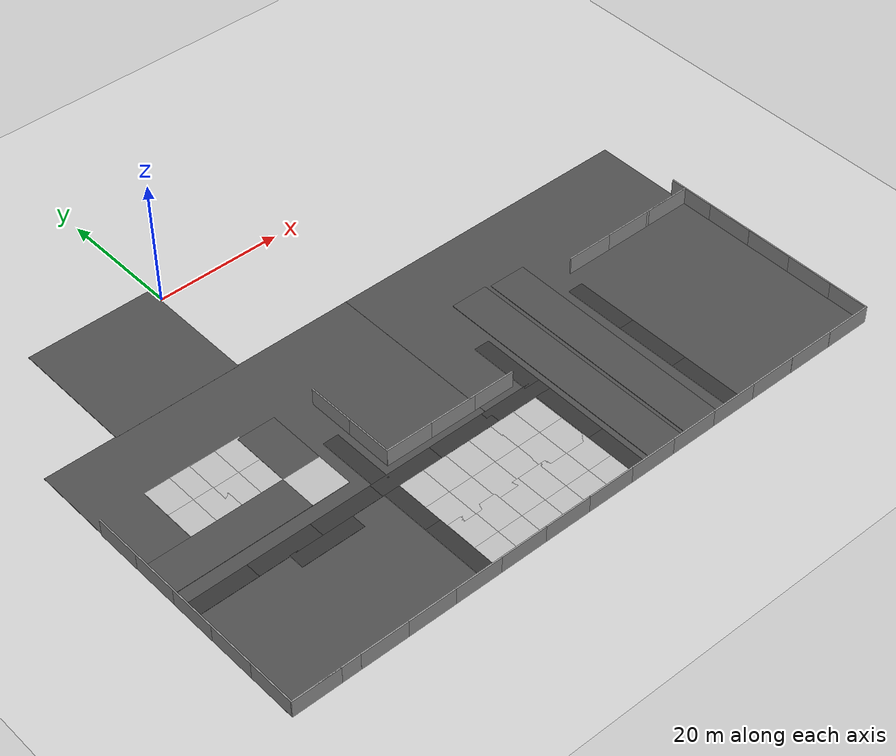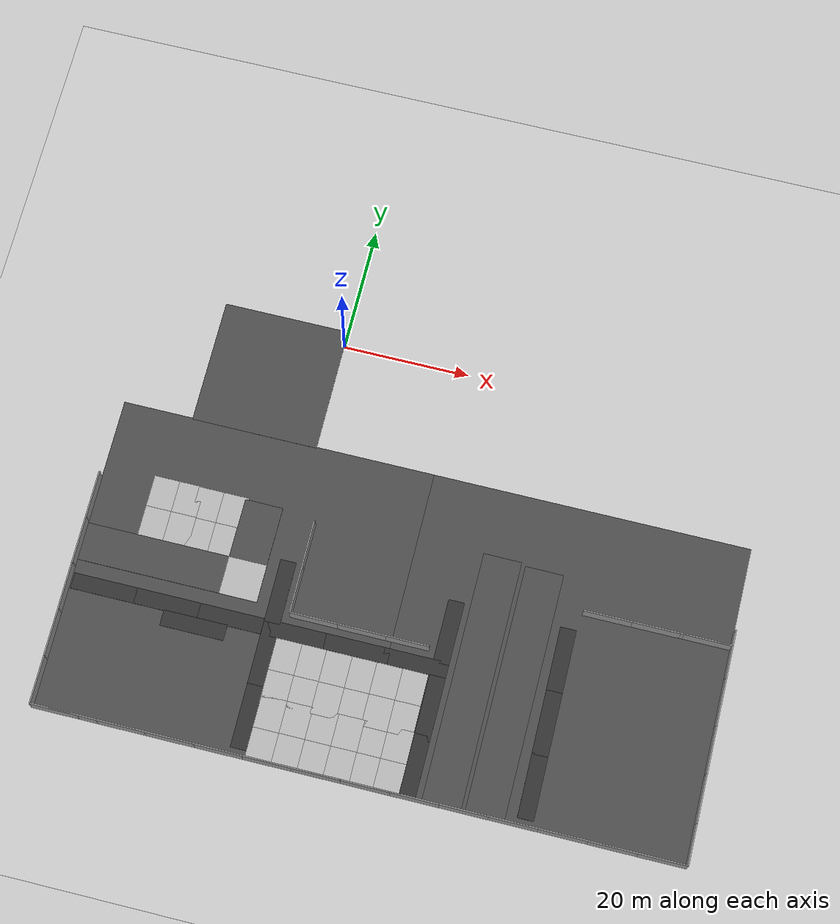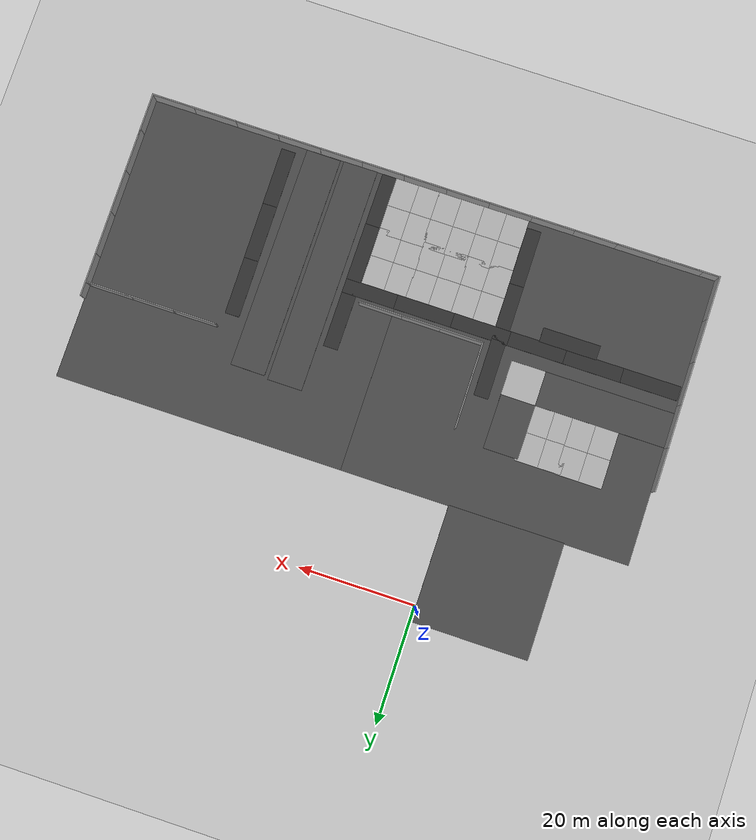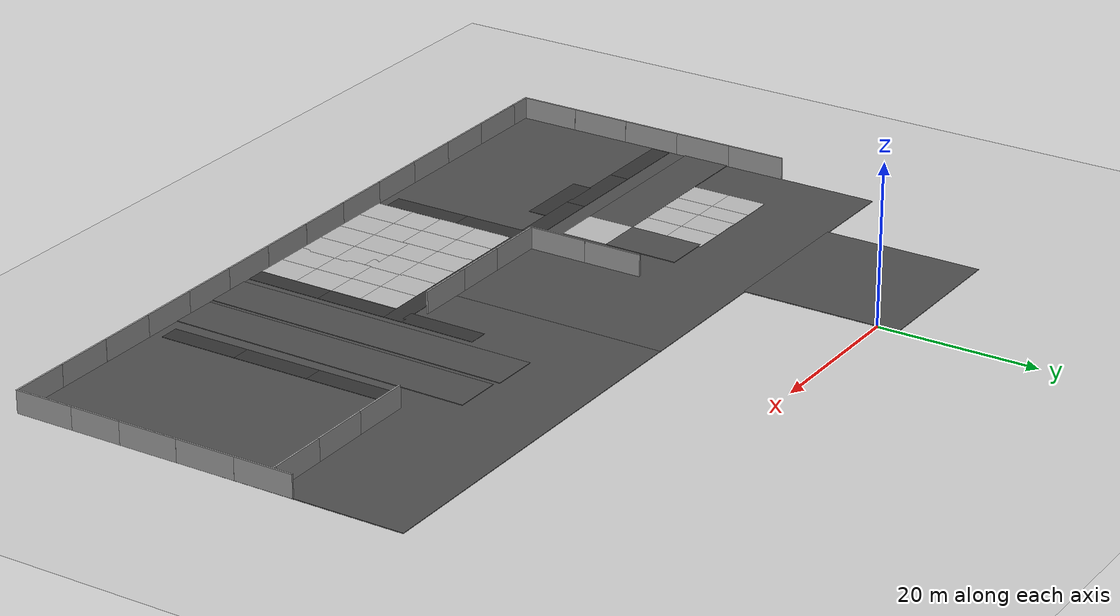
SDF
<sdf version="1.7">
 <world name="default">
  <model name="ground_plane">
   <static>1</static>
   <link name="link">
    <collision name="collision">
     <geometry><plane><normal>0 0 1</normal><size>100 100</size></plane></geometry>
     <surface><friction><ode><mu>100</mu><mu2>50</mu2></ode></friction></surface>
    </collision>
    <visual name="visual">
     <cast_shadows>0</cast_shadows>
     <geometry><plane><normal>0 0 1</normal><size>100 100</size></plane></geometry>
     <material>
      <script><uri>file://media/materials/scripts/gazebo.material</uri><name>Gazebo/Grey</name></script>
     </material>
    </visual>
   </link>
  </model>
  <model name="asphalt_plane">
   <static>1</static>
   <link name="link">
    <collision name="collision">
     <geometry><box><size>20 20 0.1</size></box></geometry>
     <surface><friction><ode><mu>100</mu><mu2>50</mu2></ode></friction></surface>
    </collision>
    <visual name="visual">
     <cast_shadows>0</cast_shadows>
     <geometry><box><size>20 20 0.1</size></box></geometry>
     <material>
      <script>
       <uri>model://asphalt_plane/materials/scripts</uri>
       <uri>model://asphalt_plane/materials/textures</uri>
       <name>vrc/asphalt</name>
      </script>
     </material>
    </visual>
   </link>
   <pose>-10.1692 -7.43707 0 0 -0 0</pose>
  </model>
  <model name="grey_wall_clone">
   <static>1</static>
   <link name="link">
    <pose>0 0 1.4 0 -0 0</pose>
    <collision name="collision"><geometry><box><size>7.5 0.2 2.8</size></box></geometry></collision>
    <visual name="visual">
     <cast_shadows>0</cast_shadows>
     <geometry><box><size>7.5 0.2 2.8</size></box></geometry>
     <material>
      <script>
       <uri>model://grey_wall/materials/scripts</uri>
       <uri>model://grey_wall/materials/textures</uri>
       <name>vrc/grey_wall</name>
      </script>
     </material>
    </visual>
   </link>
   <pose>49.4295 -33.5823 0 0 -0 0</pose>
  </model>
  <model name="asphalt_plane_0">
   <static>1</static>
   <link name="link">
    <collision name="collision"><geometry><box><size>50 50 0.1</size></box></geometry></collision>
    <visual name="visual">
     <cast_shadows>0</cast_shadows>
     <geometry><box><size>50 50 0.1</size></box></geometry>
     <material>
      <script>
       <uri>model://asphalt_plane/materials/scripts</uri>
       <uri>model://asphalt_plane/materials/textures</uri>
       <name>vrc/asphalt</name>
      </script>
     </material>
    </visual>
   </link>
   <pose>-6.22709 -42.2685 -0.007309 0 -0 0</pose>
  </model>
  <model name="side walk_clone_0_clone_clone_clone_0_clone_clone_3">
   <pose>3.83426 -46.9929 0 0 -0 0</pose>
   <static>1</static>
   <link name="link">
    <visual name="visual">
     <pose>0 0 0.05 0 -0 0</pose>
     <geometry><box><size>10 2.5 0.1</size></box></geometry>
     <material><ambient>0.2 0.2 0.2 1</ambient></material>
    </visual>
    <collision name="collision">
     <pose>0 0 0.05 0 -0 0</pose>
     <geometry><box><size>10 2.5 0.1</size></box></geometry>
    </collision>
   </link>
  </model>
  <model name="side walk_clone_0_clone_clone_clone_0_clone_clone_4">
   <pose>-5.93815 -47.0144 0 0 -0 0</pose>
   <static>1</static>
   <link name="link">
    <visual name="visual">
     <pose>0 0 0.05 0 -0 0</pose>
     <geometry><box><size>10 2.5 0.1</size></box></geometry>
     <material><ambient>0.2 0.2 0.2 1</ambient></material>
    </visual>
    <collision name="collision">
     <pose>0 0 0.05 0 -0 0</pose>
     <geometry><box><size>10 2.5 0.1</size></box></geometry>
    </collision>
   </link>
  </model>
  <model name="side walk_clone_0_clone_clone_clone_0_clone_clone_5">
   <pose>-15.9248 -47.0111 0 0 -0 0</pose>
   <static>1</static>
   <link name="link">
    <visual name="visual">
     <pose>0 0 0.05 0 -0 0</pose>
     <geometry><box><size>10 2.5 0.1</size></box></geometry>
     <material><ambient>0.2 0.2 0.2 1</ambient></material>
    </visual>
    <collision name="collision">
     <pose>0 0 0.05 0 -0 0</pose>
     <geometry><box><size>10 2.5 0.1</size></box></geometry>
    </collision>
   </link>
  </model>
  <model name="side walk_clone_0_clone_clone_clone_0_clone_clone_6">
   <pose>-25.9206 -47.0184 0 0 -0 0</pose>
   <static>1</static>
   <link name="link">
    <visual name="visual">
     <pose>0 0 0.05 0 -0 0</pose>
     <geometry><box><size>10 2.5 0.1</size></box></geometry>
     <material><ambient>0.2 0.2 0.2 1</ambient></material>
    </visual>
    <collision name="collision">
     <pose>0 0 0.05 0 -0 0</pose>
     <geometry><box><size>10 2.5 0.1</size></box></geometry>
    </collision>
   </link>
  </model>
  <model name="side walk_clone_0_clone_clone_clone_0_clone_clone_7">
   <pose>13.792 -46.9837 0 0 -0 0</pose>
   <static>1</static>
   <link name="link">
    <visual name="visual">
     <pose>0 0 0.05 0 -0 0</pose>
     <geometry><box><size>10 2.5 0.1</size></box></geometry>
     <material><ambient>0.2 0.2 0.2 1</ambient></material>
    </visual>
    <collision name="collision">
     <pose>0 0 0.05 0 -0 0</pose>
     <geometry><box><size>10 2.5 0.1</size></box></geometry>
    </collision>
   </link>
  </model>
  <model name="side walk_clone_1_clone_clone_clone_clone_0_clone">
   <pose>0.312658 -41.1369 0 0 0 -1.5667</pose>
   <static>1</static>
   <link name="link">
    <visual name="visual">
     <pose>0 0 0.05 0 -0 0</pose>
     <geometry><box><size>10 2.5 0.1</size></box></geometry>
     <material><ambient>0.2 0.2 0.2 1</ambient></material>
    </visual>
    <collision name="collision">
     <pose>0 0 0.05 0 -0 0</pose>
     <geometry><box><size>10 2.5 0.1</size></box></geometry>
    </collision>
   </link>
  </model>
  <model name="side walk_clone_1_clone_clone_clone_clone_0_clone_0">
   <pose>0.356942 -51.0999 0 0 0 -1.5667</pose>
   <static>1</static>
   <link name="link">
    <visual name="visual">
     <pose>0 0 0.05 0 -0 0</pose>
     <geometry><box><size>10 2.5 0.1</size></box></geometry>
     <material><ambient>0.2 0.2 0.2 1</ambient></material>
    </visual>
    <collision name="collision">
     <pose>0 0 0.05 0 -0 0</pose>
     <geometry><box><size>10 2.5 0.1</size></box></geometry>
    </collision>
   </link>
  </model>
  <model name="side walk_clone_1_clone_clone_clone_clone_0_clone_0_clone">
   <pose>0.402208 -61.0372 0 0 0 -1.5667</pose>
   <static>1</static>
   <link name="link">
    <visual name="visual">
     <pose>0 0 0.05 0 -0 0</pose>
     <geometry><box><size>10 2.5 0.1</size></box></geometry>
     <material><ambient>0.2 0.2 0.2 1</ambient></material>
    </visual>
    <collision name="collision">
     <pose>0 0 0.05 0 -0 0</pose>
     <geometry><box><size>10 2.5 0.1</size></box></geometry>
    </collision>
   </link>
  </model>
  <model name="mud_box_clone_5">
   <static>1</static>
   <link name="link">
    <collision name="collision"><geometry><box><size>8 10 0.2</size></box></geometry></collision>
    <visual name="visual_1">
     <pose>-2 2.5 0 0 -0 0</pose>
     <cast_shadows>0</cast_shadows>
     <geometry><box><size>4 5 0.2</size></box></geometry>
     <material>
      <script>
       <uri>model://mud_box/materials/scripts</uri>
       <uri>model://mud_box/materials/textures</uri>
       <name>vrc/mud</name>
      </script>
     </material>
    </visual>
    <visual name="visual_2">
     <pose>2 2.5 0 0 -0 0</pose>
     <cast_shadows>0</cast_shadows>
     <geometry><box><size>4 5 0.2</size></box></geometry>
     <material>
      <script>
       <uri>model://mud_box/materials/scripts</uri>
       <uri>model://mud_box/materials/textures</uri>
       <name>vrc/mud</name>
      </script>
     </material>
    </visual>
    <visual name="visual_3">
     <pose>2 -2.5 0 0 -0 0</pose>
     <cast_shadows>0</cast_shadows>
     <geometry><box><size>4 5 0.2</size></box></geometry>
     <material>
      <script>
       <uri>model://mud_box/materials/scripts</uri>
       <uri>model://mud_box/materials/textures</uri>
       <name>vrc/mud</name>
      </script>
     </material>
    </visual>
    <visual name="visual_4">
     <pose>-2 -2.5 0 0 -0 0</pose>
     <cast_shadows>0</cast_shadows>
     <geometry><box><size>4 5 0.2</size></box></geometry>
     <material>
      <script>
       <uri>model://mud_box/materials/scripts</uri>
       <uri>model://mud_box/materials/textures</uri>
       <name>vrc/mud</name>
      </script>
     </material>
    </visual>
   </link>
   <pose>5.61442 -53.24 0 0 -0 0</pose>
  </model>
  <model name="road_plane_without_marks">
   <static>1</static>
   <link name="link">
    <collision name="collision"><geometry><box><size>22.5097 6 0.1</size></box></geometry></collision>
    <visual name="visual">
     <cast_shadows>0</cast_shadows>
     <geometry><box><size>22.5097 6 0.1</size></box></geometry>
     <material>
      <script>
       <uri>model://road_plane_without_marks/materials/scripts</uri>
       <uri>model://road_plane_without_marks/materials/textures</uri>
       <name>vrc/road_no_m</name>
      </script>
     </material>
    </visual>
   </link>
   <pose>-19.9337 -40.6069 0.081661 0 -0 0</pose>
  </model>
  <model name="road_diag">
   <static>1</static>
   <link name="link">
    <collision name="collision"><geometry><box><size>6 6 0.1</size></box></geometry></collision>
    <visual name="visual">
     <cast_shadows>0</cast_shadows>
     <geometry><box><size>6 6 0.1</size></box></geometry>
     <material>
      <script>
       <uri>model://road_diag/materials/scripts</uri>
       <uri>model://road_diag/materials/textures</uri>
       <name>vrc/diag</name>
      </script>
     </material>
    </visual>
   </link>
   <pose>-5.72976 -40.6178 0.084251 0 -0 0</pose>
  </model>
  <model name="road_plane_without_marks_clone_0">
   <static>1</static>
   <link name="link">
    <collision name="collision"><geometry><box><size>9.63712 6 0.1</size></box></geometry></collision>
    <visual name="visual">
     <cast_shadows>0</cast_shadows>
     <geometry><box><size>9.63712 6 0.1</size></box></geometry>
     <material>
      <script>
       <uri>model://road_plane_without_marks/materials/scripts</uri>
       <uri>model://road_plane_without_marks/materials/textures</uri>
       <name>vrc/road_no_m</name>
      </script>
     </material>
    </visual>
   </link>
   <pose>-5.71284 -32.9976 0.081661 0 -0 1.56522</pose>
  </model>
  <model name="side walk_clone_1_clone_clone_clone_3_clone_1">
   <pose>26.6853 -41.121 0 0 0 -1.57698</pose>
   <static>1</static>
   <link name="link">
    <visual name="visual">
     <pose>0 0 0.05 0 -0 0</pose>
     <geometry><box><size>10 2.5 0.1</size></box></geometry>
     <material><ambient>0.2 0.2 0.2 1</ambient></material>
    </visual>
    <collision name="collision">
     <pose>0 0 0.05 0 -0 0</pose>
     <geometry><box><size>10 2.5 0.1</size></box></geometry>
    </collision>
   </link>
  </model>
  <model name="side walk_clone_0_clone_clone_clone_0_clone_clone_7_clone">
   <pose>22.914 -46.9841 0 0 -0 0</pose>
   <static>1</static>
   <link name="link">
    <visual name="visual">
     <pose>0 0 0.05 0 -0 0</pose>
     <geometry><box><size>10 2.5 0.1</size></box></geometry>
     <material><ambient>0.2 0.2 0.2 1</ambient></material>
    </visual>
    <collision name="collision">
     <pose>0 0 0.05 0 -0 0</pose>
     <geometry><box><size>10 2.5 0.1</size></box></geometry>
    </collision>
   </link>
  </model>
  <model name="road_plane_without_marks_clone_clone_clone_clone">
   <static>1</static>
   <link name="link">
    <collision name="collision"><geometry><box><size>38.9031 6 0.1</size></box></geometry></collision>
    <visual name="visual">
     <cast_shadows>0</cast_shadows>
     <geometry><box><size>38.9031 6 0.1</size></box></geometry>
     <material>
      <script>
       <uri>model://road_plane_without_marks/materials/scripts</uri>
       <uri>model://road_plane_without_marks/materials/textures</uri>
       <name>vrc/road_no_m</name>
      </script>
     </material>
    </visual>
   </link>
   <pose>38.4844 -47.6889 0.081661 0 0 -1.57875</pose>
  </model>
  <model name="road_plane_without_marks_clone_0_clone_clone">
   <static>1</static>
   <link name="link">
    <collision name="collision"><geometry><box><size>39.5896 6 0.1</size></box></geometry></collision>
    <visual name="visual">
     <cast_shadows>0</cast_shadows>
     <geometry><box><size>39.5896 6 0.1</size></box></geometry>
     <material>
      <script>
       <uri>model://road_plane_without_marks/materials/scripts</uri>
       <uri>model://road_plane_without_marks/materials/textures</uri>
       <name>vrc/road_no_m</name>
      </script>
     </material>
    </visual>
   </link>
   <pose>31.8601 -47.57 0.081661 0 -0 1.56522</pose>
  </model>
  <model name="side walk_clone_1_clone_clone_clone_clone_6">
   <pose>44.1743 -41.2159 0 0 0 -1.5667</pose>
   <static>1</static>
   <link name="link">
    <visual name="visual">
     <pose>0 0 0.05 0 -0 0</pose>
     <geometry><box><size>10 2.5 0.1</size></box></geometry>
     <material><ambient>0.2 0.2 0.2 1</ambient></material>
    </visual>
    <collision name="collision">
     <pose>0 0 0.05 0 -0 0</pose>
     <geometry><box><size>10 2.5 0.1</size></box></geometry>
    </collision>
   </link>
  </model>
  <model name="side walk_clone_1_clone_clone_clone_clone_7">
   <pose>44.2221 -51.2123 0 0 0 -1.5667</pose>
   <static>1</static>
   <link name="link">
    <visual name="visual">
     <pose>0 0 0.05 0 -0 0</pose>
     <geometry><box><size>10 2.5 0.1</size></box></geometry>
     <material><ambient>0.2 0.2 0.2 1</ambient></material>
    </visual>
    <collision name="collision">
     <pose>0 0 0.05 0 -0 0</pose>
     <geometry><box><size>10 2.5 0.1</size></box></geometry>
    </collision>
   </link>
  </model>
  <model name="side walk_clone_1_clone_clone_clone_clone_8">
   <pose>44.2667 -61.0443 0 0 0 -1.5667</pose>
   <static>1</static>
   <link name="link">
    <visual name="visual">
     <pose>0 0 0.05 0 -0 0</pose>
     <geometry><box><size>10 2.5 0.1</size></box></geometry>
     <material><ambient>0.2 0.2 0.2 1</ambient></material>
    </visual>
    <collision name="collision">
     <pose>0 0 0.05 0 -0 0</pose>
     <geometry><box><size>10 2.5 0.1</size></box></geometry>
    </collision>
   </link>
  </model>
  <model name="mud_box_clone_5_clone">
   <static>1</static>
   <link name="link">
    <collision name="collision"><geometry><box><size>8 10 0.2</size></box></geometry></collision>
    <visual name="visual_1">
     <pose>-2 2.5 0 0 -0 0</pose>
     <cast_shadows>0</cast_shadows>
     <geometry><box><size>4 5 0.2</size></box></geometry>
     <material>
      <script>
       <uri>model://mud_box/materials/scripts</uri>
       <uri>model://mud_box/materials/textures</uri>
       <name>vrc/mud</name>
      </script>
     </material>
    </visual>
    <visual name="visual_2">
     <pose>2 2.5 0 0 -0 0</pose>
     <cast_shadows>0</cast_shadows>
     <geometry><box><size>4 5 0.2</size></box></geometry>
     <material>
      <script>
       <uri>model://mud_box/materials/scripts</uri>
       <uri>model://mud_box/materials/textures</uri>
       <name>vrc/mud</name>
      </script>
     </material>
    </visual>
    <visual name="visual_3">
     <pose>2 -2.5 0 0 -0 0</pose>
     <cast_shadows>0</cast_shadows>
     <geometry><box><size>4 5 0.2</size></box></geometry>
     <material>
      <script>
       <uri>model://mud_box/materials/scripts</uri>
       <uri>model://mud_box/materials/textures</uri>
       <name>vrc/mud</name>
      </script>
     </material>
    </visual>
    <visual name="visual_4">
     <pose>-2 -2.5 0 0 -0 0</pose>
     <cast_shadows>0</cast_shadows>
     <geometry><box><size>4 5 0.2</size></box></geometry>
     <material>
      <script>
       <uri>model://mud_box/materials/scripts</uri>
       <uri>model://mud_box/materials/textures</uri>
       <name>vrc/mud</name>
      </script>
     </material>
    </visual>
   </link>
   <pose>5.68059 -62.285 0 0 -0 0</pose>
  </model>
  <model name="mud_box_clone_5_clone_0">
   <static>1</static>
   <link name="link">
    <collision name="collision"><geometry><box><size>8 10 0.2</size></box></geometry></collision>
    <visual name="visual_1">
     <pose>-2 2.5 0 0 -0 0</pose>
     <cast_shadows>0</cast_shadows>
     <geometry><box><size>4 5 0.2</size></box></geometry>
     <material>
      <script>
       <uri>model://mud_box/materials/scripts</uri>
       <uri>model://mud_box/materials/textures</uri>
       <name>vrc/mud</name>
      </script>
     </material>
    </visual>
    <visual name="visual_2">
     <pose>2 2.5 0 0 -0 0</pose>
     <cast_shadows>0</cast_shadows>
     <geometry><box><size>4 5 0.2</size></box></geometry>
     <material>
      <script>
       <uri>model://mud_box/materials/scripts</uri>
       <uri>model://mud_box/materials/textures</uri>
       <name>vrc/mud</name>
      </script>
     </material>
    </visual>
    <visual name="visual_3">
     <pose>2 -2.5 0 0 -0 0</pose>
     <cast_shadows>0</cast_shadows>
     <geometry><box><size>4 5 0.2</size></box></geometry>
     <material>
      <script>
       <uri>model://mud_box/materials/scripts</uri>
       <uri>model://mud_box/materials/textures</uri>
       <name>vrc/mud</name>
      </script>
     </material>
    </visual>
    <visual name="visual_4">
     <pose>-2 -2.5 0 0 -0 0</pose>
     <cast_shadows>0</cast_shadows>
     <geometry><box><size>4 5 0.2</size></box></geometry>
     <material>
      <script>
       <uri>model://mud_box/materials/scripts</uri>
       <uri>model://mud_box/materials/textures</uri>
       <name>vrc/mud</name>
      </script>
     </material>
    </visual>
   </link>
   <pose>13.6756 -62.2979 0 0 -0 0</pose>
  </model>
  <model name="mud_box_clone_5_clone_1">
   <static>1</static>
   <link name="link">
    <collision name="collision"><geometry><box><size>8 10 0.2</size></box></geometry></collision>
    <visual name="visual_1">
     <pose>-2 2.5 0 0 -0 0</pose>
     <cast_shadows>0</cast_shadows>
     <geometry><box><size>4 5 0.2</size></box></geometry>
     <material>
      <script>
       <uri>model://mud_box/materials/scripts</uri>
       <uri>model://mud_box/materials/textures</uri>
       <name>vrc/mud</name>
      </script>
     </material>
    </visual>
    <visual name="visual_2">
     <pose>2 2.5 0 0 -0 0</pose>
     <cast_shadows>0</cast_shadows>
     <geometry><box><size>4 5 0.2</size></box></geometry>
     <material>
      <script>
       <uri>model://mud_box/materials/scripts</uri>
       <uri>model://mud_box/materials/textures</uri>
       <name>vrc/mud</name>
      </script>
     </material>
    </visual>
    <visual name="visual_3">
     <pose>2 -2.5 0 0 -0 0</pose>
     <cast_shadows>0</cast_shadows>
     <geometry><box><size>4 5 0.2</size></box></geometry>
     <material>
      <script>
       <uri>model://mud_box/materials/scripts</uri>
       <uri>model://mud_box/materials/textures</uri>
       <name>vrc/mud</name>
      </script>
     </material>
    </visual>
    <visual name="visual_4">
     <pose>-2 -2.5 0 0 -0 0</pose>
     <cast_shadows>0</cast_shadows>
     <geometry><box><size>4 5 0.2</size></box></geometry>
     <material>
      <script>
       <uri>model://mud_box/materials/scripts</uri>
       <uri>model://mud_box/materials/textures</uri>
       <name>vrc/mud</name>
      </script>
     </material>
    </visual>
   </link>
   <pose>13.4481 -53.2526 0 0 -0 0</pose>
  </model>
  <model name="mud_box_clone_5_clone_2">
   <static>1</static>
   <link name="link">
    <collision name="collision"><geometry><box><size>8 10 0.2</size></box></geometry></collision>
    <visual name="visual_1">
     <pose>-2 2.5 0 0 -0 0</pose>
     <cast_shadows>0</cast_shadows>
     <geometry><box><size>4 5 0.2</size></box></geometry>
     <material>
      <script>
       <uri>model://mud_box/materials/scripts</uri>
       <uri>model://mud_box/materials/textures</uri>
       <name>vrc/mud</name>
      </script>
     </material>
    </visual>
    <visual name="visual_2">
     <pose>2 2.5 0 0 -0 0</pose>
     <cast_shadows>0</cast_shadows>
     <geometry><box><size>4 5 0.2</size></box></geometry>
     <material>
      <script>
       <uri>model://mud_box/materials/scripts</uri>
       <uri>model://mud_box/materials/textures</uri>
       <name>vrc/mud</name>
      </script>
     </material>
    </visual>
    <visual name="visual_3">
     <pose>2 -2.5 0 0 -0 0</pose>
     <cast_shadows>0</cast_shadows>
     <geometry><box><size>4 5 0.2</size></box></geometry>
     <material>
      <script>
       <uri>model://mud_box/materials/scripts</uri>
       <uri>model://mud_box/materials/textures</uri>
       <name>vrc/mud</name>
      </script>
     </material>
    </visual>
    <visual name="visual_4">
     <pose>-2 -2.5 0 0 -0 0</pose>
     <cast_shadows>0</cast_shadows>
     <geometry><box><size>4 5 0.2</size></box></geometry>
     <material>
      <script>
       <uri>model://mud_box/materials/scripts</uri>
       <uri>model://mud_box/materials/textures</uri>
       <name>vrc/mud</name>
      </script>
     </material>
    </visual>
   </link>
   <pose>21.2812 -53.2427 0 0 -0 0</pose>
  </model>
  <model name="mud_box_clone_5_clone_3">
   <static>1</static>
   <link name="link">
    <collision name="collision"><geometry><box><size>8 10 0.2</size></box></geometry></collision>
    <visual name="visual_1">
     <pose>-2 2.5 0 0 -0 0</pose>
     <cast_shadows>0</cast_shadows>
     <geometry><box><size>4 5 0.2</size></box></geometry>
     <material>
      <script>
       <uri>model://mud_box/materials/scripts</uri>
       <uri>model://mud_box/materials/textures</uri>
       <name>vrc/mud</name>
      </script>
     </material>
    </visual>
    <visual name="visual_2">
     <pose>2 2.5 0 0 -0 0</pose>
     <cast_shadows>0</cast_shadows>
     <geometry><box><size>4 5 0.2</size></box></geometry>
     <material>
      <script>
       <uri>model://mud_box/materials/scripts</uri>
       <uri>model://mud_box/materials/textures</uri>
       <name>vrc/mud</name>
      </script>
     </material>
    </visual>
    <visual name="visual_3">
     <pose>2 -2.5 0 0 -0 0</pose>
     <cast_shadows>0</cast_shadows>
     <geometry><box><size>4 5 0.2</size></box></geometry>
     <material>
      <script>
       <uri>model://mud_box/materials/scripts</uri>
       <uri>model://mud_box/materials/textures</uri>
       <name>vrc/mud</name>
      </script>
     </material>
    </visual>
    <visual name="visual_4">
     <pose>-2 -2.5 0 0 -0 0</pose>
     <cast_shadows>0</cast_shadows>
     <geometry><box><size>4 5 0.2</size></box></geometry>
     <material>
      <script>
       <uri>model://mud_box/materials/scripts</uri>
       <uri>model://mud_box/materials/textures</uri>
       <name>vrc/mud</name>
      </script>
     </material>
    </visual>
   </link>
   <pose>21.3161 -62.3091 0 0 -0 0</pose>
  </model>
  <model name="side walk_clone_1_clone_clone_clone_3_clone_1_clone">
   <pose>26.6326 -53.1674 0 0 0 -1.57698</pose>
   <static>1</static>
   <link name="link">
    <visual name="visual">
     <pose>0 0 0.05 0 -0 0</pose>
     <geometry><box><size>10 2.5 0.1</size></box></geometry>
     <material><ambient>0.2 0.2 0.2 1</ambient></material>
    </visual>
    <collision name="collision">
     <pose>0 0 0.05 0 -0 0</pose>
     <geometry><box><size>10 2.5 0.1</size></box></geometry>
    </collision>
   </link>
  </model>
  <model name="side walk_clone_1_clone_clone_clone_3_clone_1_clone_0">
   <pose>26.5733 -62.3868 0 0 0 -1.57698</pose>
   <static>1</static>
   <link name="link">
    <visual name="visual">
     <pose>0 0 0.05 0 -0 0</pose>
     <geometry><box><size>10 2.5 0.1</size></box></geometry>
     <material><ambient>0.2 0.2 0.2 1</ambient></material>
    </visual>
    <collision name="collision">
     <pose>0 0 0.05 0 -0 0</pose>
     <geometry><box><size>10 2.5 0.1</size></box></geometry>
    </collision>
   </link>
  </model>
  <model name="grey_wall_clone_clone_0">
   <static>1</static>
   <link name="link">
    <pose>0 0 1.4 0 -0 0</pose>
    <collision name="collision"><geometry><box><size>7.5 0.2 2.8</size></box></geometry></collision>
    <visual name="visual">
     <cast_shadows>0</cast_shadows>
     <geometry><box><size>7.5 0.2 2.8</size></box></geometry>
     <material>
      <script>
       <uri>model://grey_wall/materials/scripts</uri>
       <uri>model://grey_wall/materials/textures</uri>
       <name>vrc/grey_wall</name>
      </script>
     </material>
    </visual>
   </link>
   <pose>56.8834 -33.5658 0 0 -0 0</pose>
  </model>
  <model name="grey_wall_clone_clone_1">
   <static>1</static>
   <link name="link">
    <pose>0 0 1.4 0 -0 0</pose>
    <collision name="collision"><geometry><box><size>7.5 0.2 2.8</size></box></geometry></collision>
    <visual name="visual">
     <cast_shadows>0</cast_shadows>
     <geometry><box><size>7.5 0.2 2.8</size></box></geometry>
     <material>
      <script>
       <uri>model://grey_wall/materials/scripts</uri>
       <uri>model://grey_wall/materials/textures</uri>
       <name>vrc/grey_wall</name>
      </script>
     </material>
    </visual>
   </link>
   <pose>64.2954 -33.542 0 0 -0 0</pose>
  </model>
  <model name="mud_box_clone_5_clone_clone_5">
   <static>1</static>
   <link name="link">
    <collision name="collision"><geometry><box><size>8 10 0.2</size></box></geometry></collision>
    <visual name="visual_1">
     <pose>-2 2.5 0 0 -0 0</pose>
     <cast_shadows>0</cast_shadows>
     <geometry><box><size>4 5 0.2</size></box></geometry>
     <material>
      <script>
       <uri>model://mud_box/materials/scripts</uri>
       <uri>model://mud_box/materials/textures</uri>
       <name>vrc/mud</name>
      </script>
     </material>
    </visual>
    <visual name="visual_2">
     <pose>2 2.5 0 0 -0 0</pose>
     <cast_shadows>0</cast_shadows>
     <geometry><box><size>4 5 0.2</size></box></geometry>
     <material>
      <script>
       <uri>model://mud_box/materials/scripts</uri>
       <uri>model://mud_box/materials/textures</uri>
       <name>vrc/mud</name>
      </script>
     </material>
    </visual>
    <visual name="visual_3">
     <pose>2 -2.5 0 0 -0 0</pose>
     <cast_shadows>0</cast_shadows>
     <geometry><box><size>4 5 0.2</size></box></geometry>
     <material>
      <script>
       <uri>model://mud_box/materials/scripts</uri>
       <uri>model://mud_box/materials/textures</uri>
       <name>vrc/mud</name>
      </script>
     </material>
    </visual>
    <visual name="visual_4">
     <pose>-2 -2.5 0 0 -0 0</pose>
     <cast_shadows>0</cast_shadows>
     <geometry><box><size>4 5 0.2</size></box></geometry>
     <material>
      <script>
       <uri>model://mud_box/materials/scripts</uri>
       <uri>model://mud_box/materials/textures</uri>
       <name>vrc/mud</name>
      </script>
     </material>
    </visual>
   </link>
   <pose>-19.2965 -32.8021 0 0 -0 0</pose>
  </model>
  <model name="mud_box_clone_5_clone_clone_6">
   <static>1</static>
   <link name="link">
    <collision name="collision"><geometry><box><size>8 10 0.2</size></box></geometry></collision>
    <visual name="visual_1">
     <pose>-2 2.5 0 0 -0 0</pose>
     <cast_shadows>0</cast_shadows>
     <geometry><box><size>4 5 0.2</size></box></geometry>
     <material>
      <script>
       <uri>model://mud_box/materials/scripts</uri>
       <uri>model://mud_box/materials/textures</uri>
       <name>vrc/mud</name>
      </script>
     </material>
    </visual>
    <visual name="visual_2">
     <pose>2 2.5 0 0 -0 0</pose>
     <cast_shadows>0</cast_shadows>
     <geometry><box><size>4 5 0.2</size></box></geometry>
     <material>
      <script>
       <uri>model://mud_box/materials/scripts</uri>
       <uri>model://mud_box/materials/textures</uri>
       <name>vrc/mud</name>
      </script>
     </material>
    </visual>
    <visual name="visual_3">
     <pose>2 -2.5 0 0 -0 0</pose>
     <cast_shadows>0</cast_shadows>
     <geometry><box><size>4 5 0.2</size></box></geometry>
     <material>
      <script>
       <uri>model://mud_box/materials/scripts</uri>
       <uri>model://mud_box/materials/textures</uri>
       <name>vrc/mud</name>
      </script>
     </material>
    </visual>
    <visual name="visual_4">
     <pose>-2 -2.5 0 0 -0 0</pose>
     <cast_shadows>0</cast_shadows>
     <geometry><box><size>4 5 0.2</size></box></geometry>
     <material>
      <script>
       <uri>model://mud_box/materials/scripts</uri>
       <uri>model://mud_box/materials/textures</uri>
       <name>vrc/mud</name>
      </script>
     </material>
    </visual>
   </link>
   <pose>-12.1662 -32.883 0 0 -0 0</pose>
  </model>
  <model name="grey_wall_clone_clone_clone_2_clone_1_clone_1_clone">
   <static>1</static>
   <link name="link">
    <pose>0 0 1.4 0 -0 0</pose>
    <collision name="collision"><geometry><box><size>7.5 0.2 2.8</size></box></geometry></collision>
    <visual name="visual">
     <cast_shadows>0</cast_shadows>
     <geometry><box><size>7.5 0.2 2.8</size></box></geometry>
     <material>
      <script>
       <uri>model://grey_wall/materials/scripts</uri>
       <uri>model://grey_wall/materials/textures</uri>
       <name>vrc/grey_wall</name>
      </script>
     </material>
    </visual>
   </link>
   <pose>6.49718 -44.5365 0 0 -0 3.13795</pose>
  </model>
  <model name="grey_wall_clone_clone_clone_2_clone_1_clone_1_clone_0">
   <static>1</static>
   <link name="link">
    <pose>0 0 1.4 0 -0 0</pose>
    <collision name="collision"><geometry><box><size>7.5 0.2 2.8</size></box></geometry></collision>
    <visual name="visual">
     <cast_shadows>0</cast_shadows>
     <geometry><box><size>7.5 0.2 2.8</size></box></geometry>
     <material>
      <script>
       <uri>model://grey_wall/materials/scripts</uri>
       <uri>model://grey_wall/materials/textures</uri>
       <name>vrc/grey_wall</name>
      </script>
     </material>
    </visual>
   </link>
   <pose>13.9949 -44.5705 0 0 -0 3.13795</pose>
  </model>
  <model name="grey_wall_clone_clone_clone_clone_4">
   <static>1</static>
   <link name="link">
    <pose>0 0 1.4 0 -0 0</pose>
    <collision name="collision"><geometry><box><size>7.5 0.2 2.8</size></box></geometry></collision>
    <visual name="visual">
     <cast_shadows>0</cast_shadows>
     <geometry><box><size>7.5 0.2 2.8</size></box></geometry>
     <material>
      <script>
       <uri>model://grey_wall/materials/scripts</uri>
       <uri>model://grey_wall/materials/textures</uri>
       <name>vrc/grey_wall</name>
      </script>
     </material>
    </visual>
   </link>
   <pose>2.7968 -33.3615 0 0 0 -1.56776</pose>
  </model>
  <model name="grey_wall_clone_clone_clone_clone_5">
   <static>1</static>
   <link name="link">
    <pose>0 0 1.4 0 -0 0</pose>
    <collision name="collision"><geometry><box><size>7.5 0.2 2.8</size></box></geometry></collision>
    <visual name="visual">
     <cast_shadows>0</cast_shadows>
     <geometry><box><size>7.5 0.2 2.8</size></box></geometry>
     <material>
      <script>
       <uri>model://grey_wall/materials/scripts</uri>
       <uri>model://grey_wall/materials/textures</uri>
       <name>vrc/grey_wall</name>
      </script>
     </material>
    </visual>
   </link>
   <pose>2.8217 -40.8088 0 0 0 -1.56776</pose>
  </model>
  <model name="grey_wall_clone_clone_clone_clone_0_clone_4">
   <static>1</static>
   <link name="link">
    <pose>0 0 1.4 0 -0 0</pose>
    <collision name="collision"><geometry><box><size>7.5 0.2 2.8</size></box></geometry></collision>
    <visual name="visual">
     <cast_shadows>0</cast_shadows>
     <geometry><box><size>7.5 0.2 2.8</size></box></geometry>
     <material>
      <script>
       <uri>model://grey_wall/materials/scripts</uri>
       <uri>model://grey_wall/materials/textures</uri>
       <name>vrc/grey_wall</name>
      </script>
     </material>
    </visual>
   </link>
   <pose>68.5684 -34.8034 0 0 0 -1.56776</pose>
  </model>
  <model name="grey_wall_clone_clone_1_clone_2">
   <static>1</static>
   <link name="link">
    <pose>0 0 1.4 0 -0 0</pose>
    <collision name="collision"><geometry><box><size>7.5 0.2 2.8</size></box></geometry></collision>
    <visual name="visual">
     <cast_shadows>0</cast_shadows>
     <geometry><box><size>7.5 0.2 2.8</size></box></geometry>
     <material>
      <script>
       <uri>model://grey_wall/materials/scripts</uri>
       <uri>model://grey_wall/materials/textures</uri>
       <name>vrc/grey_wall</name>
      </script>
     </material>
    </visual>
   </link>
   <pose>64.8496 -33.5469 0 0 -0 0</pose>
  </model>
  <model name="grey_wall_clone_clone_clone_clone_0_clone_4_clone">
   <static>1</static>
   <link name="link">
    <pose>0 0 1.4 0 -0 0</pose>
    <collision name="collision"><geometry><box><size>7.5 0.2 2.8</size></box></geometry></collision>
    <visual name="visual">
     <cast_shadows>0</cast_shadows>
     <geometry><box><size>7.5 0.2 2.8</size></box></geometry>
     <material>
      <script>
       <uri>model://grey_wall/materials/scripts</uri>
       <uri>model://grey_wall/materials/textures</uri>
       <name>vrc/grey_wall</name>
      </script>
     </material>
    </visual>
   </link>
   <pose>68.5966 -42.2466 0 0 0 -1.56776</pose>
  </model>
  <model name="grey_wall_clone_clone_clone_clone_0_clone_4_clone_0">
   <static>1</static>
   <link name="link">
    <pose>0 0 1.4 0 -0 0</pose>
    <collision name="collision"><geometry><box><size>7.5 0.2 2.8</size></box></geometry></collision>
    <visual name="visual">
     <cast_shadows>0</cast_shadows>
     <geometry><box><size>7.5 0.2 2.8</size></box></geometry>
     <material>
      <script>
       <uri>model://grey_wall/materials/scripts</uri>
       <uri>model://grey_wall/materials/textures</uri>
       <name>vrc/grey_wall</name>
      </script>
     </material>
    </visual>
   </link>
   <pose>68.6298 -49.7466 0 0 0 -1.56776</pose>
  </model>
  <model name="grey_wall_clone_clone_clone_clone_0_clone_4_clone_1">
   <static>1</static>
   <link name="link">
    <pose>0 0 1.4 0 -0 0</pose>
    <collision name="collision"><geometry><box><size>7.5 0.2 2.8</size></box></geometry></collision>
    <visual name="visual">
     <cast_shadows>0</cast_shadows>
     <geometry><box><size>7.5 0.2 2.8</size></box></geometry>
     <material>
      <script>
       <uri>model://grey_wall/materials/scripts</uri>
       <uri>model://grey_wall/materials/textures</uri>
       <name>vrc/grey_wall</name>
      </script>
     </material>
    </visual>
   </link>
   <pose>68.6504 -57.2219 0 0 0 -1.56776</pose>
  </model>
  <model name="grey_wall_clone_clone_clone_clone_0_clone_4_clone_2">
   <static>1</static>
   <link name="link">
    <pose>0 0 1.4 0 -0 0</pose>
    <collision name="collision"><geometry><box><size>7.5 0.2 2.8</size></box></geometry></collision>
    <visual name="visual">
     <cast_shadows>0</cast_shadows>
     <geometry><box><size>7.5 0.2 2.8</size></box></geometry>
     <material>
      <script>
       <uri>model://grey_wall/materials/scripts</uri>
       <uri>model://grey_wall/materials/textures</uri>
       <name>vrc/grey_wall</name>
      </script>
     </material>
    </visual>
   </link>
   <pose>68.6721 -63.677 0 0 0 -1.56776</pose>
  </model>
  <model name="grey_wall_clone_clone_2">
   <static>1</static>
   <link name="link">
    <pose>0 0 1.4 0 -0 0</pose>
    <collision name="collision"><geometry><box><size>7.5 0.2 2.8</size></box></geometry></collision>
    <visual name="visual">
     <cast_shadows>0</cast_shadows>
     <geometry><box><size>7.5 0.2 2.8</size></box></geometry>
     <material>
      <script>
       <uri>model://grey_wall/materials/scripts</uri>
       <uri>model://grey_wall/materials/textures</uri>
       <name>vrc/grey_wall</name>
      </script>
     </material>
    </visual>
   </link>
   <pose>65.029 -67.3329 0 0 -0 0</pose>
  </model>
  <model name="grey_wall_clone_clone_3">
   <static>1</static>
   <link name="link">
    <pose>0 0 1.4 0 -0 0</pose>
    <collision name="collision"><geometry><box><size>7.5 0.2 2.8</size></box></geometry></collision>
    <visual name="visual">
     <cast_shadows>0</cast_shadows>
     <geometry><box><size>7.5 0.2 2.8</size></box></geometry>
     <material>
      <script>
       <uri>model://grey_wall/materials/scripts</uri>
       <uri>model://grey_wall/materials/textures</uri>
       <name>vrc/grey_wall</name>
      </script>
     </material>
    </visual>
   </link>
   <pose>57.5488 -67.3242 0 0 -0 0</pose>
  </model>
  <model name="grey_wall_clone_clone_4">
   <static>1</static>
   <link name="link">
    <pose>0 0 1.4 0 -0 0</pose>
    <collision name="collision"><geometry><box><size>7.5 0.2 2.8</size></box></geometry></collision>
    <visual name="visual">
     <cast_shadows>0</cast_shadows>
     <geometry><box><size>7.5 0.2 2.8</size></box></geometry>
     <material>
      <script>
       <uri>model://grey_wall/materials/scripts</uri>
       <uri>model://grey_wall/materials/textures</uri>
       <name>vrc/grey_wall</name>
      </script>
     </material>
    </visual>
   </link>
   <pose>50.0536 -67.3043 0 0 -0 0</pose>
  </model>
  <model name="grey_wall_clone_clone_5">
   <static>1</static>
   <link name="link">
    <pose>0 0 1.4 0 -0 0</pose>
    <collision name="collision"><geometry><box><size>7.5 0.2 2.8</size></box></geometry></collision>
    <visual name="visual">
     <cast_shadows>0</cast_shadows>
     <geometry><box><size>7.5 0.2 2.8</size></box></geometry>
     <material>
      <script>
       <uri>model://grey_wall/materials/scripts</uri>
       <uri>model://grey_wall/materials/textures</uri>
       <name>vrc/grey_wall</name>
      </script>
     </material>
    </visual>
   </link>
   <pose>42.5967 -67.309 0 0 -0 0</pose>
  </model>
  <model name="grey_wall_clone_clone_6">
   <static>1</static>
   <link name="link">
    <pose>0 0 1.4 0 -0 0</pose>
    <collision name="collision"><geometry><box><size>7.5 0.2 2.8</size></box></geometry></collision>
    <visual name="visual">
     <cast_shadows>0</cast_shadows>
     <geometry><box><size>7.5 0.2 2.8</size></box></geometry>
     <material>
      <script>
       <uri>model://grey_wall/materials/scripts</uri>
       <uri>model://grey_wall/materials/textures</uri>
       <name>vrc/grey_wall</name>
      </script>
     </material>
    </visual>
   </link>
   <pose>35.1656 -67.3188 0 0 -0 0</pose>
  </model>
  <model name="grey_wall_clone_clone_7">
   <static>1</static>
   <link name="link">
    <pose>0 0 1.4 0 -0 0</pose>
    <collision name="collision"><geometry><box><size>7.5 0.2 2.8</size></box></geometry></collision>
    <visual name="visual">
     <cast_shadows>0</cast_shadows>
     <geometry><box><size>7.5 0.2 2.8</size></box></geometry>
     <material>
      <script>
       <uri>model://grey_wall/materials/scripts</uri>
       <uri>model://grey_wall/materials/textures</uri>
       <name>vrc/grey_wall</name>
      </script>
     </material>
    </visual>
   </link>
   <pose>27.7084 -67.327 0 0 -0 0</pose>
  </model>
  <model name="grey_wall_clone_clone_8">
   <static>1</static>
   <link name="link">
    <pose>0 0 1.4 0 -0 0</pose>
    <collision name="collision"><geometry><box><size>7.5 0.2 2.8</size></box></geometry></collision>
    <visual name="visual">
     <cast_shadows>0</cast_shadows>
     <geometry><box><size>7.5 0.2 2.8</size></box></geometry>
     <material>
      <script>
       <uri>model://grey_wall/materials/scripts</uri>
       <uri>model://grey_wall/materials/textures</uri>
       <name>vrc/grey_wall</name>
      </script>
     </material>
    </visual>
   </link>
   <pose>20.2123 -67.3237 0 0 -0 0</pose>
  </model>
  <model name="grey_wall_clone_clone_9">
   <static>1</static>
   <link name="link">
    <pose>0 0 1.4 0 -0 0</pose>
    <collision name="collision"><geometry><box><size>7.5 0.2 2.8</size></box></geometry></collision>
    <visual name="visual">
     <cast_shadows>0</cast_shadows>
     <geometry><box><size>7.5 0.2 2.8</size></box></geometry>
     <material>
      <script>
       <uri>model://grey_wall/materials/scripts</uri>
       <uri>model://grey_wall/materials/textures</uri>
       <name>vrc/grey_wall</name>
      </script>
     </material>
    </visual>
   </link>
   <pose>12.7097 -67.3197 0 0 -0 0</pose>
  </model>
  <model name="grey_wall_clone_clone_10">
   <static>1</static>
   <link name="link">
    <pose>0 0 1.4 0 -0 0</pose>
    <collision name="collision"><geometry><box><size>7.5 0.2 2.8</size></box></geometry></collision>
    <visual name="visual">
     <cast_shadows>0</cast_shadows>
     <geometry><box><size>7.5 0.2 2.8</size></box></geometry>
     <material>
      <script>
       <uri>model://grey_wall/materials/scripts</uri>
       <uri>model://grey_wall/materials/textures</uri>
       <name>vrc/grey_wall</name>
      </script>
     </material>
    </visual>
   </link>
   <pose>5.22567 -67.3226 0 0 -0 0</pose>
  </model>
  <model name="grey_wall_clone_clone_11">
   <static>1</static>
   <link name="link">
    <pose>0 0 1.4 0 -0 0</pose>
    <collision name="collision"><geometry><box><size>7.5 0.2 2.8</size></box></geometry></collision>
    <visual name="visual">
     <cast_shadows>0</cast_shadows>
     <geometry><box><size>7.5 0.2 2.8</size></box></geometry>
     <material>
      <script>
       <uri>model://grey_wall/materials/scripts</uri>
       <uri>model://grey_wall/materials/textures</uri>
       <name>vrc/grey_wall</name>
      </script>
     </material>
    </visual>
   </link>
   <pose>-2.21628 -67.3302 0 0 -0 0</pose>
  </model>
  <model name="grey_wall_clone_clone_12">
   <static>1</static>
   <link name="link">
    <pose>0 0 1.4 0 -0 0</pose>
    <collision name="collision"><geometry><box><size>7.5 0.2 2.8</size></box></geometry></collision>
    <visual name="visual">
     <cast_shadows>0</cast_shadows>
     <geometry><box><size>7.5 0.2 2.8</size></box></geometry>
     <material>
      <script>
       <uri>model://grey_wall/materials/scripts</uri>
       <uri>model://grey_wall/materials/textures</uri>
       <name>vrc/grey_wall</name>
      </script>
     </material>
    </visual>
   </link>
   <pose>-9.6821 -67.3345 0 0 -0 0</pose>
  </model>
  <model name="grey_wall_clone_clone_13">
   <static>1</static>
   <link name="link">
    <pose>0 0 1.4 0 -0 0</pose>
    <collision name="collision"><geometry><box><size>7.5 0.2 2.8</size></box></geometry></collision>
    <visual name="visual">
     <cast_shadows>0</cast_shadows>
     <geometry><box><size>7.5 0.2 2.8</size></box></geometry>
     <material>
      <script>
       <uri>model://grey_wall/materials/scripts</uri>
       <uri>model://grey_wall/materials/textures</uri>
       <name>vrc/grey_wall</name>
      </script>
     </material>
    </visual>
   </link>
   <pose>-17.0965 -67.3344 0 0 -0 0</pose>
  </model>
  <model name="grey_wall_clone_clone_14">
   <static>1</static>
   <link name="link">
    <pose>0 0 1.4 0 -0 0</pose>
    <collision name="collision"><geometry><box><size>7.5 0.2 2.8</size></box></geometry></collision>
    <visual name="visual">
     <cast_shadows>0</cast_shadows>
     <geometry><box><size>7.5 0.2 2.8</size></box></geometry>
     <material>
      <script>
       <uri>model://grey_wall/materials/scripts</uri>
       <uri>model://grey_wall/materials/textures</uri>
       <name>vrc/grey_wall</name>
      </script>
     </material>
    </visual>
   </link>
   <pose>-24.5295 -67.329 0 0 -0 0</pose>
  </model>
  <model name="grey_wall_clone_clone_15">
   <static>1</static>
   <link name="link">
    <pose>0 0 1.4 0 -0 0</pose>
    <collision name="collision"><geometry><box><size>7.5 0.2 2.8</size></box></geometry></collision>
    <visual name="visual">
     <cast_shadows>0</cast_shadows>
     <geometry><box><size>7.5 0.2 2.8</size></box></geometry>
     <material>
      <script>
       <uri>model://grey_wall/materials/scripts</uri>
       <uri>model://grey_wall/materials/textures</uri>
       <name>vrc/grey_wall</name>
      </script>
     </material>
    </visual>
   </link>
   <pose>-27.4926 -67.3364 0 0 -0 0</pose>
  </model>
  <model name="grey_wall_clone_clone_clone_clone_5_clone">
   <static>1</static>
   <link name="link">
    <pose>0 0 1.4 0 -0 0</pose>
    <collision name="collision"><geometry><box><size>7.5 0.2 2.8</size></box></geometry></collision>
    <visual name="visual">
     <cast_shadows>0</cast_shadows>
     <geometry><box><size>7.5 0.2 2.8</size></box></geometry>
     <material>
      <script>
       <uri>model://grey_wall/materials/scripts</uri>
       <uri>model://grey_wall/materials/textures</uri>
       <name>vrc/grey_wall</name>
      </script>
     </material>
    </visual>
   </link>
   <pose>-31.1489 -63.5851 0 0 0 -1.56776</pose>
  </model>
  <model name="grey_wall_clone_clone_clone_clone_5_clone_0">
   <static>1</static>
   <link name="link">
    <pose>0 0 1.4 0 -0 0</pose>
    <collision name="collision"><geometry><box><size>7.5 0.2 2.8</size></box></geometry></collision>
    <visual name="visual">
     <cast_shadows>0</cast_shadows>
     <geometry><box><size>7.5 0.2 2.8</size></box></geometry>
     <material>
      <script>
       <uri>model://grey_wall/materials/scripts</uri>
       <uri>model://grey_wall/materials/textures</uri>
       <name>vrc/grey_wall</name>
      </script>
     </material>
    </visual>
   </link>
   <pose>-31.1752 -56.0979 0 0 0 -1.56776</pose>
  </model>
  <model name="grey_wall_clone_clone_clone_clone_5_clone_1">
   <static>1</static>
   <link name="link">
    <pose>0 0 1.4 0 -0 0</pose>
    <collision name="collision"><geometry><box><size>7.5 0.2 2.8</size></box></geometry></collision>
    <visual name="visual">
     <cast_shadows>0</cast_shadows>
     <geometry><box><size>7.5 0.2 2.8</size></box></geometry>
     <material>
      <script>
       <uri>model://grey_wall/materials/scripts</uri>
       <uri>model://grey_wall/materials/textures</uri>
       <name>vrc/grey_wall</name>
      </script>
     </material>
    </visual>
   </link>
   <pose>-31.2066 -48.6225 0 0 0 -1.56776</pose>
  </model>
  <model name="grey_wall_clone_clone_clone_clone_5_clone_2">
   <static>1</static>
   <link name="link">
    <pose>0 0 1.4 0 -0 0</pose>
    <collision name="collision"><geometry><box><size>7.5 0.2 2.8</size></box></geometry></collision>
    <visual name="visual">
     <cast_shadows>0</cast_shadows>
     <geometry><box><size>7.5 0.2 2.8</size></box></geometry>
     <material>
      <script>
       <uri>model://grey_wall/materials/scripts</uri>
       <uri>model://grey_wall/materials/textures</uri>
       <name>vrc/grey_wall</name>
      </script>
     </material>
    </visual>
   </link>
   <pose>-31.2233 -41.1281 0 0 0 -1.56776</pose>
  </model>
  <model name="grey_wall_clone_clone_clone_clone_5_clone_3">
   <static>1</static>
   <link name="link">
    <pose>0 0 1.4 0 -0 0</pose>
    <collision name="collision"><geometry><box><size>7.5 0.2 2.8</size></box></geometry></collision>
    <visual name="visual">
     <cast_shadows>0</cast_shadows>
     <geometry><box><size>7.5 0.2 2.8</size></box></geometry>
     <material>
      <script>
       <uri>model://grey_wall/materials/scripts</uri>
       <uri>model://grey_wall/materials/textures</uri>
       <name>vrc/grey_wall</name>
      </script>
     </material>
    </visual>
   </link>
   <pose>-31.2445 -33.6786 0 0 0 -1.56776</pose>
  </model>
  <model name="asphalt_plane_0_clone_clone_0">
   <static>1</static>
   <link name="link">
    <collision name="collision"><geometry><box><size>50 50 0.1</size></box></geometry></collision>
    <visual name="visual">
     <cast_shadows>0</cast_shadows>
     <geometry><box><size>50 50 0.1</size></box></geometry>
     <material>
      <script>
       <uri>model://asphalt_plane/materials/scripts</uri>
       <uri>model://asphalt_plane/materials/textures</uri>
       <name>vrc/asphalt</name>
      </script>
     </material>
    </visual>
   </link>
   <pose>43.6248 -42.278 0 0 -0 0</pose>
  </model>
  <model name="grey_wall_clone_clone_clone_2_clone_1_clone_1_clone_0_clone">
   <static>1</static>
   <link name="link">
    <pose>0 0 1.4 0 -0 0</pose>
    <collision name="collision"><geometry><box><size>7.5 0.2 2.8</size></box></geometry></collision>
    <visual name="visual">
     <cast_shadows>0</cast_shadows>
     <geometry><box><size>7.5 0.2 2.8</size></box></geometry>
     <material>
      <script>
       <uri>model://grey_wall/materials/scripts</uri>
       <uri>model://grey_wall/materials/textures</uri>
       <name>vrc/grey_wall</name>
      </script>
     </material>
    </visual>
   </link>
   <pose>20.7155 -44.5815 0 0 -0 3.13795</pose>
  </model>
  <model name="side walk_clone_0_clone_clone_clone_0_clone_clone_5_clone">
   <pose>-11.1119 -49.3677 0 0 -0 0</pose>
   <static>1</static>
   <link name="link">
    <visual name="visual">
     <pose>0 0 0.05 0 -0 0</pose>
     <geometry><box><size>10 2.5 0.1</size></box></geometry>
     <material><ambient>0.2 0.2 0.2 1</ambient></material>
    </visual>
    <collision name="collision">
     <pose>0 0 0.05 0 -0 0</pose>
     <geometry><box><size>10 2.5 0.1</size></box></geometry>
    </collision>
   </link>
  </model>
 </world>
</sdf>
